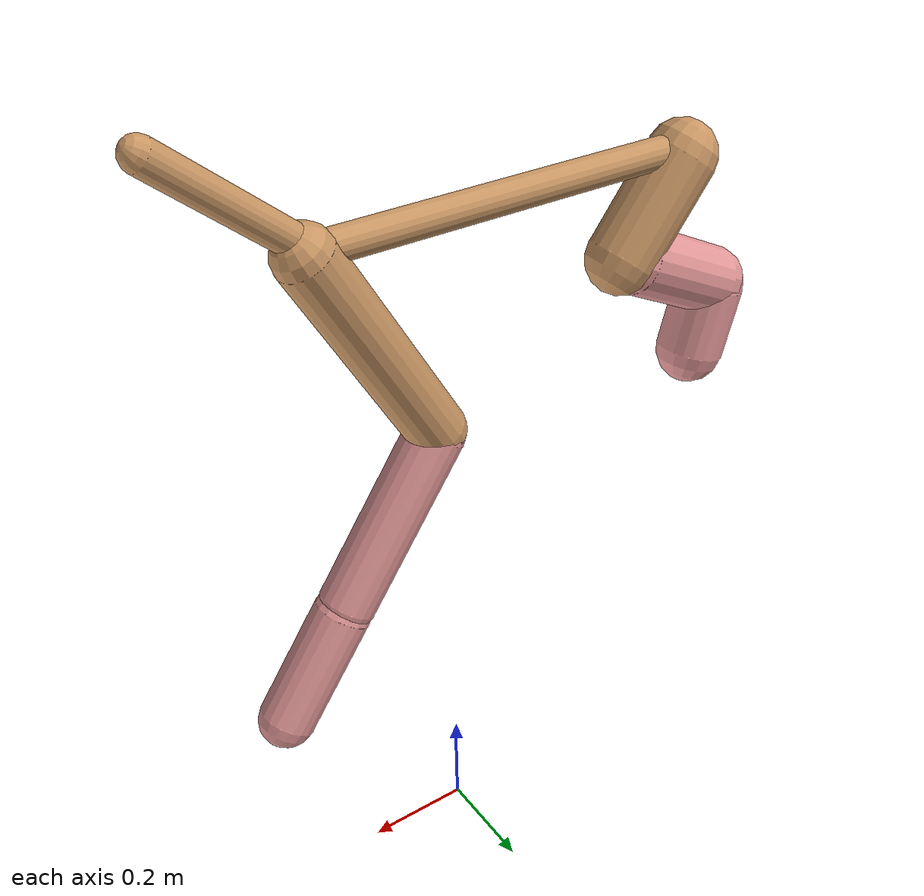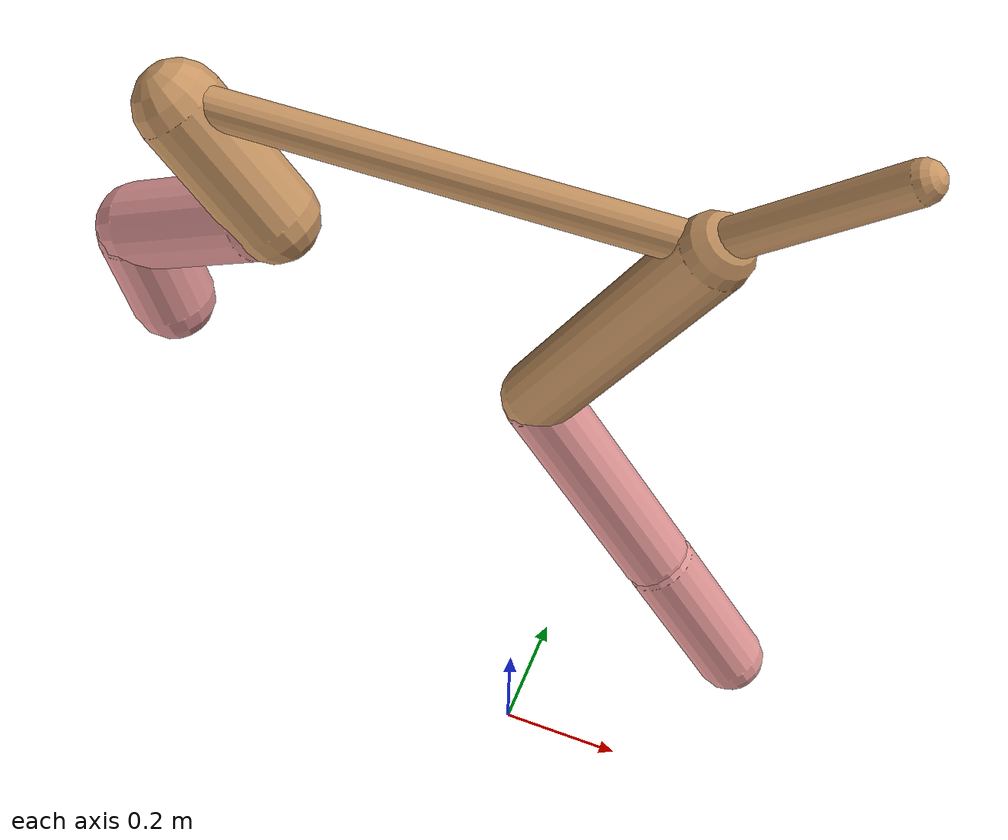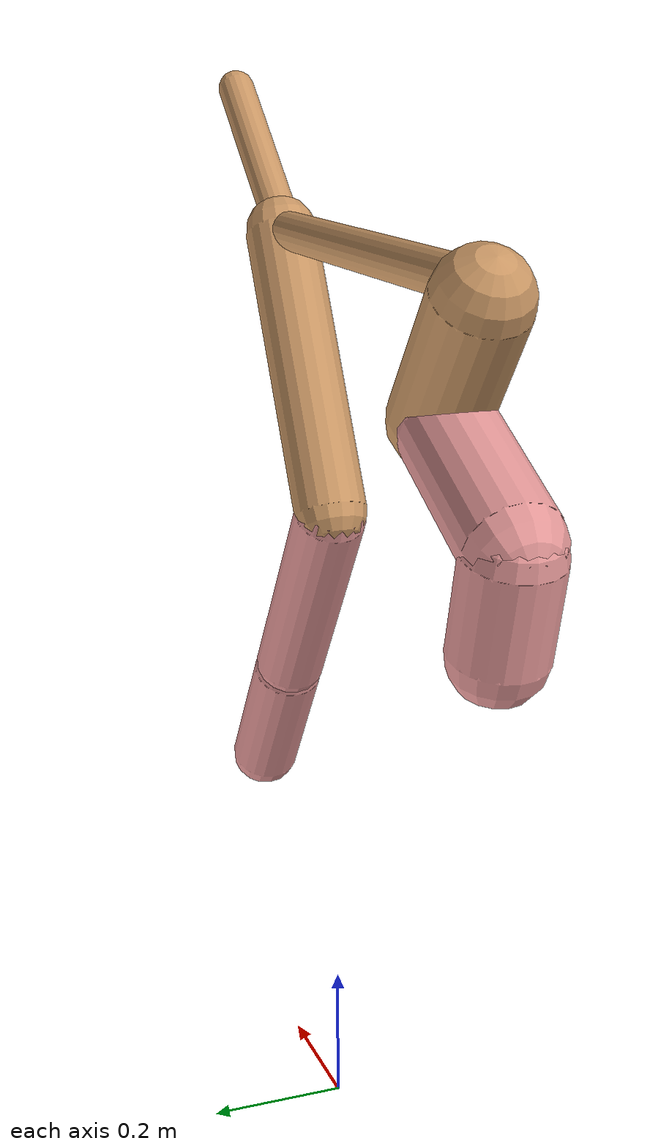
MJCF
<mujoco model="cheetah">
  <compiler angle="radian" coordinate="local" inertiafromgeom="true" settotalmass="14" />
  <default>
    <joint armature=".1" damping=".01" limited="true" solimplimit="0 .8 .03" solreflimit=".02 1" stiffness="8" />
    <geom conaffinity="0" condim="3" contype="1" friction="0.8 .1 .1" rgba="0.8 0.6 .4 1" solimp="0.0 0.8 0.01" solref="0.02 1" />
    <motor ctrllimited="true" ctrlrange="-1 1" />
  </default>
  <size nstack="300000" nuser_geom="1" />
  <option gravity="0 0 -9.81" timestep="0.01" />
  <worldbody>
    <body name="torso" pos="0.0 0.0 1.3139991668303335">
      <joint armature="0" axis="1 0 0" damping="0" limited="false" name="ignorex" pos="0 0 0" stiffness="0" type="slide" />
      <joint armature="0" axis="0 0 1" damping="0" limited="false" name="ignorez" pos="0 0 0" stiffness="0" type="slide" />
      <joint armature="0" axis="0 1 0" damping="0" limited="false" name="ignorey" pos="0 0 0" stiffness="0" type="hinge" />
      <geom fromto="-0.5 0.0 0.0 0.2463663146794205 0.0 0.0" name="torso" size="0.028252650210845467" type="capsule" />
      <geom axisangle="0 1 0 .87" name="head" pos="0.3463663146794205 0.0 0.1" size="0.027713130706971498 0.15" type="capsule" />

      <body name="bthigh" pos="-.5 0 0">
        <joint axis="0 1 0" damping="6" name="bthigh" pos="0 0 0" range="-.52 1.05" stiffness="240" type="hinge" />
        <geom axisangle="0 1 0 -3.8" name="bthigh" pos="0.0734775819030384 0.0 -0.0955208564739499" size="0.06386251858691329 0.10149999999999999" type="capsule" />
        <body name="bshin" pos="0.10695516380607678 0.0 -0.18104171294789978">
          <joint axis="0 1 0" damping="4.5" name="bshin" pos="0 0 0" range="-.785 .785" stiffness="180" type="hinge" />
          <geom axisangle="0 1 0 -2.03" name="bshin" pos="-0.0997507764050038 0.0 -0.0498753882025019" rgba="0.9 0.6 0.6 1" size="0.06386251858691329 0.105" type="capsule" />
          <body name="bfoot" pos="-0.1995015528100076 0.0 -0.0997507764050038">
            <joint axis="0 1 0" damping="3" name="bfoot" pos="0 0 0" range="-.4 .785" stiffness="120" type="hinge" />
            <geom axisangle="0 1 0 -.27" name="bfoot" pos="0.021667753813597694 0.0 -0.07005907066396588" rgba="0.9 0.6 0.6 1" size="0.06386251858691329 0.0658" type="capsule" />
            <inertial mass="10" />
          </body>
        </body>
      </body>
      <body name="fthigh" pos="0.2463663146794205 0.0 0.0">
        <joint axis="0 1 0" damping="4.5" name="fthigh" pos="0 0 0" range="-1.5 0.8" stiffness="180" type="hinge" />
        <geom axisangle="0 1 0 .52" name="fthigh" pos="-0.11304085758536686 0.0 -0.1937843272892003" size="0.052801414628414534 0.2184203861803707" type="capsule" />
        <body name="fshin" pos="-0.22608171517073372 0.0 -0.3875686545784006">
          <joint axis="0 1 0" damping="3" name="fshin" pos="0 0 0" range="-1.2 1.1" stiffness="120" type="hinge" />
          <geom axisangle="0 1 0 -.6" name="fshin" pos="0.10485984884752247 0.0 -0.1451905599427234" rgba="0.9 0.6 0.6 1" size="0.052801414628414534 0.17407940552721274" type="capsule" />
          <body name="ffoot" pos="0.20971969769504495 0.0 -0.2903811198854468">
            <joint axis="0 1 0" damping="1.5" name="ffoot" pos="0 0 0" range="-3.1 -0.3" stiffness="60" type="hinge" />
            <geom axisangle="0 1 0 -.6" name="ffoot" pos="0.06931143277892954 0.0 -0.1078177843227793" rgba="0.9 0.6 0.6 1" size="0.052801414628414534 0.1149580979896688" type="capsule" />
            <inertial mass="10" />
          </body>
        </body>
      </body>
    </body>
  </worldbody>
  <actuator>
    <motor gear="120" joint="bthigh" name="bthigh" />
    <motor gear="90" joint="bshin" name="bshin" />
    <motor gear="60" joint="bfoot" name="bfoot" />
    <motor gear="120" joint="fthigh" name="fthigh" />
    <motor gear="60" joint="fshin" name="fshin" />
    <motor gear="30" joint="ffoot" name="ffoot" />
  </actuator>
</mujoco>
